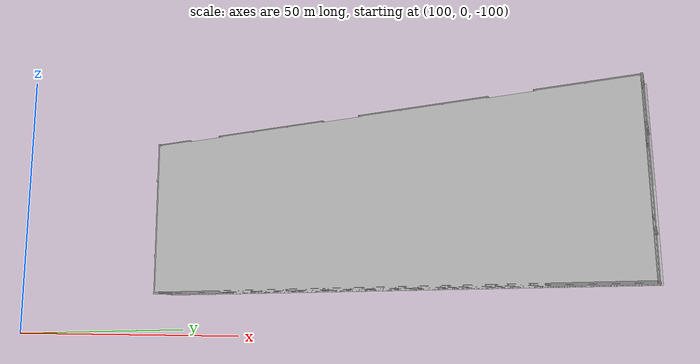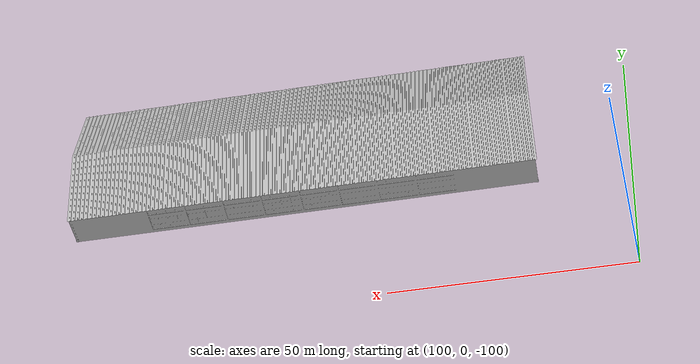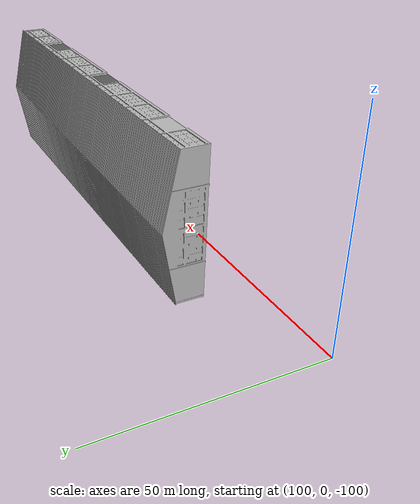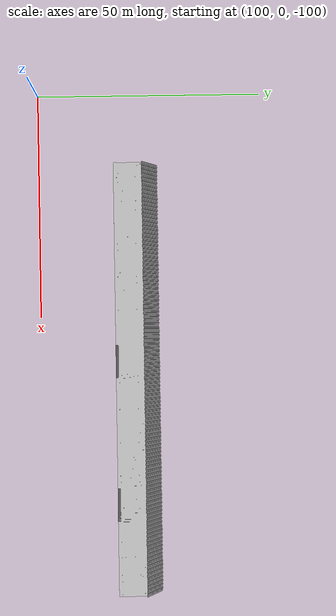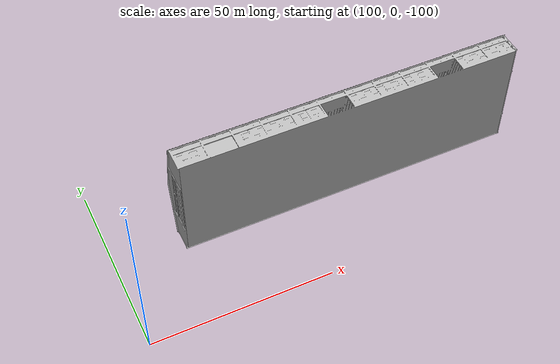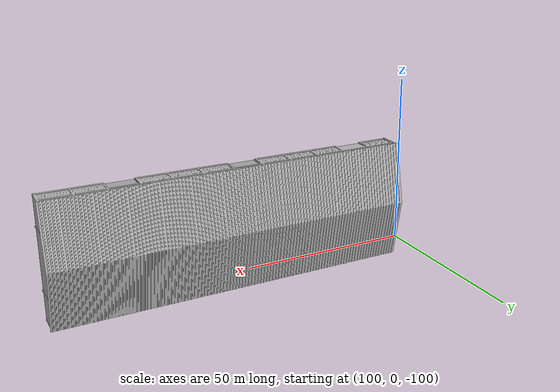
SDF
<?xml version='1.0'?>
<sdf version='1.4'>
  <model name="warehouse">
  <static>true</static>
    <link name='base_body'>
      <pose>0 0 .1 0 0 0</pose>
       <collision name='collision'>
        <geometry>
          <mesh>
            <uri>model://warehouse/meshes/warehouse.stl</uri>
            <scale>1.0 1.0 1.0</scale>
          </mesh>
        </geometry>
      </collision>
      <visual name='visual'>
        <geometry>
          <mesh>
            <uri>model://warehouse/meshes/warehouse.stl</uri>
            <scale>1.0 1.0 1.0</scale>
          </mesh>
        </geometry>
	<material>
          <script>
            <uri>model://warehouse/mat/mat.material</uri>
            <name>warehouse_mat</name>
          </script>
        </material>
      </visual>
    </link>
  </model>
</sdf>
